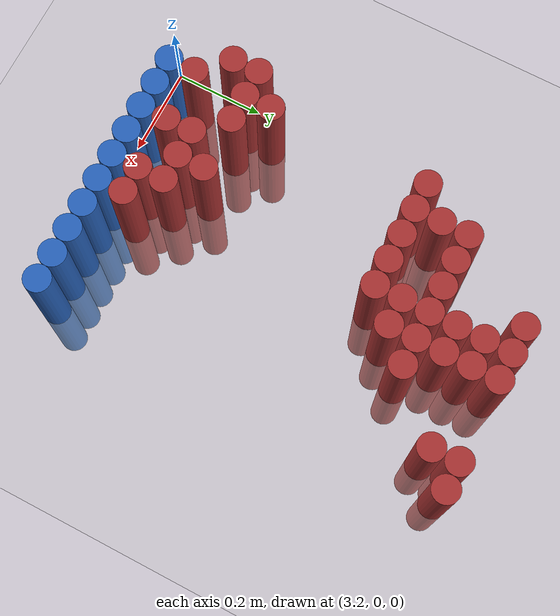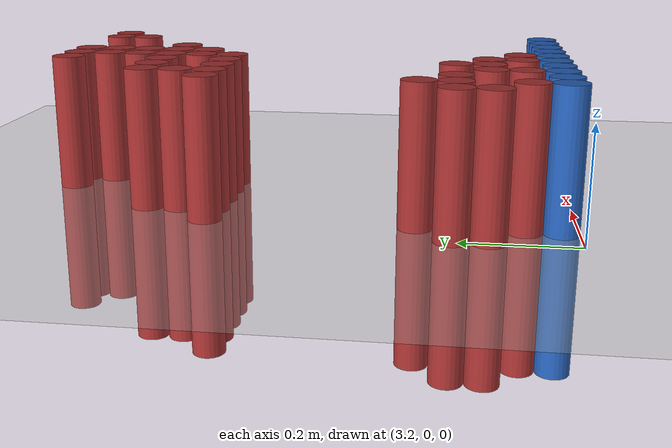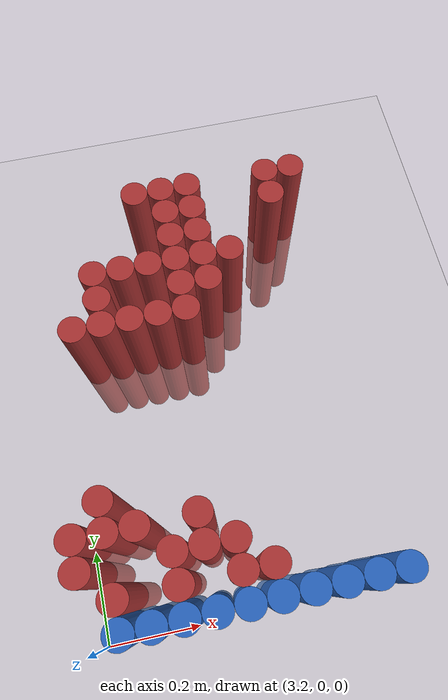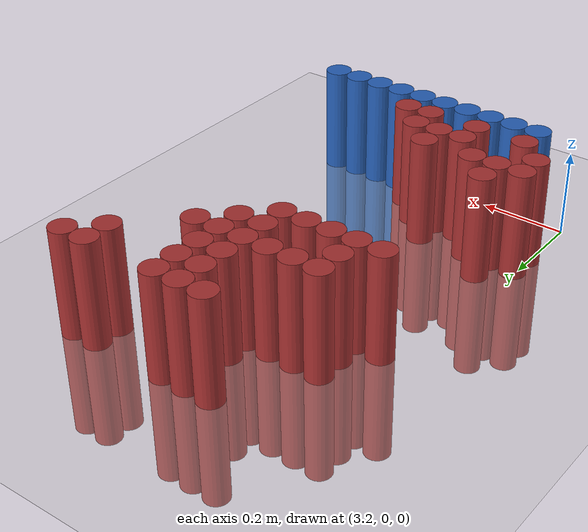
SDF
<sdf version="1.6">
 <world name="default">
  <model name="ground_plane">
   <static>1</static>
   <link name="link">
    <collision name="collision">
     <geometry><plane><normal>0 0 1</normal><size>100 100</size></plane></geometry>
     <surface><friction><ode><mu>100</mu><mu2>50</mu2></ode></friction></surface>
    </collision>
    <visual name="visual">
     <cast_shadows>0</cast_shadows>
     <geometry><plane><normal>0 0 1</normal><size>100 100</size></plane></geometry>
     <material>
      <script><uri>file://media/materials/scripts/gazebo.material</uri><name>Gazebo/Grey</name></script>
     </material>
    </visual>
   </link>
  </model>
  <model name="unit_cylinder_224">
   <static>1</static>
   <pose>3.450000 0.930000 0.000000 0.000000 0.000000 0.000000</pose>
   <link name="link">
    <inertial>
     <mass>1</mass>
     <inertia><ixx>0.145833</ixx><ixy>0</ixy><ixz>0</ixz><iyy>0.145833</iyy><iyz>0</iyz><izz>0.125</izz></inertia>
    </inertial>
    <collision name="collision">
     <geometry><cylinder><radius>0.030000</radius><length>0.5</length></cylinder></geometry>
    </collision>
    <visual name="visual">
     <geometry><cylinder><radius>0.030000</radius><length>0.5</length></cylinder></geometry>
     <material>
      <ambient>0.648000 0.192000 0.192000 1</ambient>
      <diffuse>0.648000 0.192000 0.192000 1</diffuse>
     </material>
     <material>
      <script><name>Gazebo/Grey</name><uri>file://media/materials/scripts/gazebo.material</uri></script>
     </material>
    </visual>
   </link>
  </model>
  <model name="unit_cylinder_225">
   <static>1</static>
   <pose>3.510000 0.930000 0.000000 0.000000 0.000000 0.000000</pose>
   <link name="link">
    <inertial>
     <mass>1</mass>
     <inertia><ixx>0.145833</ixx><ixy>0</ixy><ixz>0</ixz><iyy>0.145833</iyy><iyz>0</iyz><izz>0.125</izz></inertia>
    </inertial>
    <collision name="collision">
     <geometry><cylinder><radius>0.030000</radius><length>0.5</length></cylinder></geometry>
    </collision>
    <visual name="visual">
     <geometry><cylinder><radius>0.030000</radius><length>0.5</length></cylinder></geometry>
     <material>
      <ambient>0.648000 0.192000 0.192000 1</ambient>
      <diffuse>0.648000 0.192000 0.192000 1</diffuse>
     </material>
     <material>
      <script><name>Gazebo/Grey</name><uri>file://media/materials/scripts/gazebo.material</uri></script>
     </material>
    </visual>
   </link>
  </model>
  <model name="unit_cylinder_226">
   <static>1</static>
   <pose>3.570000 0.930000 0.000000 0.000000 0.000000 0.000000</pose>
   <link name="link">
    <inertial>
     <mass>1</mass>
     <inertia><ixx>0.145833</ixx><ixy>0</ixy><ixz>0</ixz><iyy>0.145833</iyy><iyz>0</iyz><izz>0.125</izz></inertia>
    </inertial>
    <collision name="collision">
     <geometry><cylinder><radius>0.030000</radius><length>0.5</length></cylinder></geometry>
    </collision>
    <visual name="visual">
     <geometry><cylinder><radius>0.030000</radius><length>0.5</length></cylinder></geometry>
     <material>
      <ambient>0.648000 0.192000 0.192000 1</ambient>
      <diffuse>0.648000 0.192000 0.192000 1</diffuse>
     </material>
     <material>
      <script><name>Gazebo/Grey</name><uri>file://media/materials/scripts/gazebo.material</uri></script>
     </material>
    </visual>
   </link>
  </model>
  <model name="unit_cylinder_227">
   <static>1</static>
   <pose>3.750000 0.930000 0.000000 0.000000 0.000000 0.000000</pose>
   <link name="link">
    <inertial>
     <mass>1</mass>
     <inertia><ixx>0.145833</ixx><ixy>0</ixy><ixz>0</ixz><iyy>0.145833</iyy><iyz>0</iyz><izz>0.125</izz></inertia>
    </inertial>
    <collision name="collision">
     <geometry><cylinder><radius>0.030000</radius><length>0.5</length></cylinder></geometry>
    </collision>
    <visual name="visual">
     <geometry><cylinder><radius>0.030000</radius><length>0.5</length></cylinder></geometry>
     <material>
      <ambient>0.648000 0.192000 0.192000 1</ambient>
      <diffuse>0.648000 0.192000 0.192000 1</diffuse>
     </material>
     <material>
      <script><name>Gazebo/Grey</name><uri>file://media/materials/scripts/gazebo.material</uri></script>
     </material>
    </visual>
   </link>
  </model>
  <model name="unit_cylinder_228">
   <static>1</static>
   <pose>3.810000 0.930000 0.000000 0.000000 0.000000 0.000000</pose>
   <link name="link">
    <inertial>
     <mass>1</mass>
     <inertia><ixx>0.145833</ixx><ixy>0</ixy><ixz>0</ixz><iyy>0.145833</iyy><iyz>0</iyz><izz>0.125</izz></inertia>
    </inertial>
    <collision name="collision">
     <geometry><cylinder><radius>0.030000</radius><length>0.5</length></cylinder></geometry>
    </collision>
    <visual name="visual">
     <geometry><cylinder><radius>0.030000</radius><length>0.5</length></cylinder></geometry>
     <material>
      <ambient>0.648000 0.192000 0.192000 1</ambient>
      <diffuse>0.648000 0.192000 0.192000 1</diffuse>
     </material>
     <material>
      <script><name>Gazebo/Grey</name><uri>file://media/materials/scripts/gazebo.material</uri></script>
     </material>
    </visual>
   </link>
  </model>
  <model name="unit_cylinder_232">
   <static>1</static>
   <pose>3.510000 0.870000 0.000000 0.000000 0.000000 0.000000</pose>
   <link name="link">
    <inertial>
     <mass>1</mass>
     <inertia><ixx>0.145833</ixx><ixy>0</ixy><ixz>0</ixz><iyy>0.145833</iyy><iyz>0</iyz><izz>0.125</izz></inertia>
    </inertial>
    <collision name="collision">
     <geometry><cylinder><radius>0.030000</radius><length>0.5</length></cylinder></geometry>
    </collision>
    <visual name="visual">
     <geometry><cylinder><radius>0.030000</radius><length>0.5</length></cylinder></geometry>
     <material>
      <ambient>0.648000 0.192000 0.192000 1</ambient>
      <diffuse>0.648000 0.192000 0.192000 1</diffuse>
     </material>
     <material>
      <script><name>Gazebo/Grey</name><uri>file://media/materials/scripts/gazebo.material</uri></script>
     </material>
    </visual>
   </link>
  </model>
  <model name="unit_cylinder_233">
   <static>1</static>
   <pose>3.570000 0.870000 0.000000 0.000000 0.000000 0.000000</pose>
   <link name="link">
    <inertial>
     <mass>1</mass>
     <inertia><ixx>0.145833</ixx><ixy>0</ixy><ixz>0</ixz><iyy>0.145833</iyy><iyz>0</iyz><izz>0.125</izz></inertia>
    </inertial>
    <collision name="collision">
     <geometry><cylinder><radius>0.030000</radius><length>0.5</length></cylinder></geometry>
    </collision>
    <visual name="visual">
     <geometry><cylinder><radius>0.030000</radius><length>0.5</length></cylinder></geometry>
     <material>
      <ambient>0.648000 0.192000 0.192000 1</ambient>
      <diffuse>0.648000 0.192000 0.192000 1</diffuse>
     </material>
     <material>
      <script><name>Gazebo/Grey</name><uri>file://media/materials/scripts/gazebo.material</uri></script>
     </material>
    </visual>
   </link>
  </model>
  <model name="unit_cylinder_234">
   <static>1</static>
   <pose>3.750000 0.870000 0.000000 0.000000 0.000000 0.000000</pose>
   <link name="link">
    <inertial>
     <mass>1</mass>
     <inertia><ixx>0.145833</ixx><ixy>0</ixy><ixz>0</ixz><iyy>0.145833</iyy><iyz>0</iyz><izz>0.125</izz></inertia>
    </inertial>
    <collision name="collision">
     <geometry><cylinder><radius>0.030000</radius><length>0.5</length></cylinder></geometry>
    </collision>
    <visual name="visual">
     <geometry><cylinder><radius>0.030000</radius><length>0.5</length></cylinder></geometry>
     <material>
      <ambient>0.648000 0.192000 0.192000 1</ambient>
      <diffuse>0.648000 0.192000 0.192000 1</diffuse>
     </material>
     <material>
      <script><name>Gazebo/Grey</name><uri>file://media/materials/scripts/gazebo.material</uri></script>
     </material>
    </visual>
   </link>
  </model>
  <model name="unit_cylinder_235">
   <static>1</static>
   <pose>3.510000 0.810000 0.000000 0.000000 0.000000 0.000000</pose>
   <link name="link">
    <inertial>
     <mass>1</mass>
     <inertia><ixx>0.145833</ixx><ixy>0</ixy><ixz>0</ixz><iyy>0.145833</iyy><iyz>0</iyz><izz>0.125</izz></inertia>
    </inertial>
    <collision name="collision">
     <geometry><cylinder><radius>0.030000</radius><length>0.5</length></cylinder></geometry>
    </collision>
    <visual name="visual">
     <geometry><cylinder><radius>0.030000</radius><length>0.5</length></cylinder></geometry>
     <material>
      <ambient>0.648000 0.192000 0.192000 1</ambient>
      <diffuse>0.648000 0.192000 0.192000 1</diffuse>
     </material>
     <material>
      <script><name>Gazebo/Grey</name><uri>file://media/materials/scripts/gazebo.material</uri></script>
     </material>
    </visual>
   </link>
  </model>
  <model name="unit_cylinder_236">
   <static>1</static>
   <pose>3.570000 0.810000 0.000000 0.000000 0.000000 0.000000</pose>
   <link name="link">
    <inertial>
     <mass>1</mass>
     <inertia><ixx>0.145833</ixx><ixy>0</ixy><ixz>0</ixz><iyy>0.145833</iyy><iyz>0</iyz><izz>0.125</izz></inertia>
    </inertial>
    <collision name="collision">
     <geometry><cylinder><radius>0.030000</radius><length>0.5</length></cylinder></geometry>
    </collision>
    <visual name="visual">
     <geometry><cylinder><radius>0.030000</radius><length>0.5</length></cylinder></geometry>
     <material>
      <ambient>0.648000 0.192000 0.192000 1</ambient>
      <diffuse>0.648000 0.192000 0.192000 1</diffuse>
     </material>
     <material>
      <script><name>Gazebo/Grey</name><uri>file://media/materials/scripts/gazebo.material</uri></script>
     </material>
    </visual>
   </link>
  </model>
  <model name="unit_cylinder_240">
   <static>1</static>
   <pose>3.330000 0.750000 0.000000 0.000000 0.000000 0.000000</pose>
   <link name="link">
    <inertial>
     <mass>1</mass>
     <inertia><ixx>0.145833</ixx><ixy>0</ixy><ixz>0</ixz><iyy>0.145833</iyy><iyz>0</iyz><izz>0.125</izz></inertia>
    </inertial>
    <collision name="collision">
     <geometry><cylinder><radius>0.030000</radius><length>0.5</length></cylinder></geometry>
    </collision>
    <visual name="visual">
     <geometry><cylinder><radius>0.030000</radius><length>0.5</length></cylinder></geometry>
     <material>
      <ambient>0.648000 0.192000 0.192000 1</ambient>
      <diffuse>0.648000 0.192000 0.192000 1</diffuse>
     </material>
     <material>
      <script><name>Gazebo/Grey</name><uri>file://media/materials/scripts/gazebo.material</uri></script>
     </material>
    </visual>
   </link>
  </model>
  <model name="unit_cylinder_241">
   <static>1</static>
   <pose>3.390000 0.750000 0.000000 0.000000 0.000000 0.000000</pose>
   <link name="link">
    <inertial>
     <mass>1</mass>
     <inertia><ixx>0.145833</ixx><ixy>0</ixy><ixz>0</ixz><iyy>0.145833</iyy><iyz>0</iyz><izz>0.125</izz></inertia>
    </inertial>
    <collision name="collision">
     <geometry><cylinder><radius>0.030000</radius><length>0.5</length></cylinder></geometry>
    </collision>
    <visual name="visual">
     <geometry><cylinder><radius>0.030000</radius><length>0.5</length></cylinder></geometry>
     <material>
      <ambient>0.648000 0.192000 0.192000 1</ambient>
      <diffuse>0.648000 0.192000 0.192000 1</diffuse>
     </material>
     <material>
      <script><name>Gazebo/Grey</name><uri>file://media/materials/scripts/gazebo.material</uri></script>
     </material>
    </visual>
   </link>
  </model>
  <model name="unit_cylinder_242">
   <static>1</static>
   <pose>3.450000 0.750000 0.000000 0.000000 0.000000 0.000000</pose>
   <link name="link">
    <inertial>
     <mass>1</mass>
     <inertia><ixx>0.145833</ixx><ixy>0</ixy><ixz>0</ixz><iyy>0.145833</iyy><iyz>0</iyz><izz>0.125</izz></inertia>
    </inertial>
    <collision name="collision">
     <geometry><cylinder><radius>0.030000</radius><length>0.5</length></cylinder></geometry>
    </collision>
    <visual name="visual">
     <geometry><cylinder><radius>0.030000</radius><length>0.5</length></cylinder></geometry>
     <material>
      <ambient>0.648000 0.192000 0.192000 1</ambient>
      <diffuse>0.648000 0.192000 0.192000 1</diffuse>
     </material>
     <material>
      <script><name>Gazebo/Grey</name><uri>file://media/materials/scripts/gazebo.material</uri></script>
     </material>
    </visual>
   </link>
  </model>
  <model name="unit_cylinder_243">
   <static>1</static>
   <pose>3.510000 0.750000 0.000000 0.000000 0.000000 0.000000</pose>
   <link name="link">
    <inertial>
     <mass>1</mass>
     <inertia><ixx>0.145833</ixx><ixy>0</ixy><ixz>0</ixz><iyy>0.145833</iyy><iyz>0</iyz><izz>0.125</izz></inertia>
    </inertial>
    <collision name="collision">
     <geometry><cylinder><radius>0.030000</radius><length>0.5</length></cylinder></geometry>
    </collision>
    <visual name="visual">
     <geometry><cylinder><radius>0.030000</radius><length>0.5</length></cylinder></geometry>
     <material>
      <ambient>0.648000 0.192000 0.192000 1</ambient>
      <diffuse>0.648000 0.192000 0.192000 1</diffuse>
     </material>
     <material>
      <script><name>Gazebo/Grey</name><uri>file://media/materials/scripts/gazebo.material</uri></script>
     </material>
    </visual>
   </link>
  </model>
  <model name="unit_cylinder_244">
   <static>1</static>
   <pose>3.570000 0.750000 0.000000 0.000000 0.000000 0.000000</pose>
   <link name="link">
    <inertial>
     <mass>1</mass>
     <inertia><ixx>0.145833</ixx><ixy>0</ixy><ixz>0</ixz><iyy>0.145833</iyy><iyz>0</iyz><izz>0.125</izz></inertia>
    </inertial>
    <collision name="collision">
     <geometry><cylinder><radius>0.030000</radius><length>0.5</length></cylinder></geometry>
    </collision>
    <visual name="visual">
     <geometry><cylinder><radius>0.030000</radius><length>0.5</length></cylinder></geometry>
     <material>
      <ambient>0.648000 0.192000 0.192000 1</ambient>
      <diffuse>0.648000 0.192000 0.192000 1</diffuse>
     </material>
     <material>
      <script><name>Gazebo/Grey</name><uri>file://media/materials/scripts/gazebo.material</uri></script>
     </material>
    </visual>
   </link>
  </model>
  <model name="unit_cylinder_245">
   <static>1</static>
   <pose>3.630000 0.750000 0.000000 0.000000 0.000000 0.000000</pose>
   <link name="link">
    <inertial>
     <mass>1</mass>
     <inertia><ixx>0.145833</ixx><ixy>0</ixy><ixz>0</ixz><iyy>0.145833</iyy><iyz>0</iyz><izz>0.125</izz></inertia>
    </inertial>
    <collision name="collision">
     <geometry><cylinder><radius>0.030000</radius><length>0.5</length></cylinder></geometry>
    </collision>
    <visual name="visual">
     <geometry><cylinder><radius>0.030000</radius><length>0.5</length></cylinder></geometry>
     <material>
      <ambient>0.648000 0.192000 0.192000 1</ambient>
      <diffuse>0.648000 0.192000 0.192000 1</diffuse>
     </material>
     <material>
      <script><name>Gazebo/Grey</name><uri>file://media/materials/scripts/gazebo.material</uri></script>
     </material>
    </visual>
   </link>
  </model>
  <model name="unit_cylinder_247">
   <static>1</static>
   <pose>3.330000 0.690000 0.000000 0.000000 0.000000 0.000000</pose>
   <link name="link">
    <inertial>
     <mass>1</mass>
     <inertia><ixx>0.145833</ixx><ixy>0</ixy><ixz>0</ixz><iyy>0.145833</iyy><iyz>0</iyz><izz>0.125</izz></inertia>
    </inertial>
    <collision name="collision">
     <geometry><cylinder><radius>0.030000</radius><length>0.5</length></cylinder></geometry>
    </collision>
    <visual name="visual">
     <geometry><cylinder><radius>0.030000</radius><length>0.5</length></cylinder></geometry>
     <material>
      <ambient>0.648000 0.192000 0.192000 1</ambient>
      <diffuse>0.648000 0.192000 0.192000 1</diffuse>
     </material>
     <material>
      <script><name>Gazebo/Grey</name><uri>file://media/materials/scripts/gazebo.material</uri></script>
     </material>
    </visual>
   </link>
  </model>
  <model name="unit_cylinder_248">
   <static>1</static>
   <pose>3.510000 0.690000 0.000000 0.000000 0.000000 0.000000</pose>
   <link name="link">
    <inertial>
     <mass>1</mass>
     <inertia><ixx>0.145833</ixx><ixy>0</ixy><ixz>0</ixz><iyy>0.145833</iyy><iyz>0</iyz><izz>0.125</izz></inertia>
    </inertial>
    <collision name="collision">
     <geometry><cylinder><radius>0.030000</radius><length>0.5</length></cylinder></geometry>
    </collision>
    <visual name="visual">
     <geometry><cylinder><radius>0.030000</radius><length>0.5</length></cylinder></geometry>
     <material>
      <ambient>0.648000 0.192000 0.192000 1</ambient>
      <diffuse>0.648000 0.192000 0.192000 1</diffuse>
     </material>
     <material>
      <script><name>Gazebo/Grey</name><uri>file://media/materials/scripts/gazebo.material</uri></script>
     </material>
    </visual>
   </link>
  </model>
  <model name="unit_cylinder_249">
   <static>1</static>
   <pose>3.570000 0.690000 0.000000 0.000000 0.000000 0.000000</pose>
   <link name="link">
    <inertial>
     <mass>1</mass>
     <inertia><ixx>0.145833</ixx><ixy>0</ixy><ixz>0</ixz><iyy>0.145833</iyy><iyz>0</iyz><izz>0.125</izz></inertia>
    </inertial>
    <collision name="collision">
     <geometry><cylinder><radius>0.030000</radius><length>0.5</length></cylinder></geometry>
    </collision>
    <visual name="visual">
     <geometry><cylinder><radius>0.030000</radius><length>0.5</length></cylinder></geometry>
     <material>
      <ambient>0.648000 0.192000 0.192000 1</ambient>
      <diffuse>0.648000 0.192000 0.192000 1</diffuse>
     </material>
     <material>
      <script><name>Gazebo/Grey</name><uri>file://media/materials/scripts/gazebo.material</uri></script>
     </material>
    </visual>
   </link>
  </model>
  <model name="unit_cylinder_250">
   <static>1</static>
   <pose>3.270000 0.630000 0.000000 0.000000 0.000000 0.000000</pose>
   <link name="link">
    <inertial>
     <mass>1</mass>
     <inertia><ixx>0.145833</ixx><ixy>0</ixy><ixz>0</ixz><iyy>0.145833</iyy><iyz>0</iyz><izz>0.125</izz></inertia>
    </inertial>
    <collision name="collision">
     <geometry><cylinder><radius>0.030000</radius><length>0.5</length></cylinder></geometry>
    </collision>
    <visual name="visual">
     <geometry><cylinder><radius>0.030000</radius><length>0.5</length></cylinder></geometry>
     <material>
      <ambient>0.648000 0.192000 0.192000 1</ambient>
      <diffuse>0.648000 0.192000 0.192000 1</diffuse>
     </material>
     <material>
      <script><name>Gazebo/Grey</name><uri>file://media/materials/scripts/gazebo.material</uri></script>
     </material>
    </visual>
   </link>
  </model>
  <model name="unit_cylinder_251">
   <static>1</static>
   <pose>3.330000 0.630000 0.000000 0.000000 0.000000 0.000000</pose>
   <link name="link">
    <inertial>
     <mass>1</mass>
     <inertia><ixx>0.145833</ixx><ixy>0</ixy><ixz>0</ixz><iyy>0.145833</iyy><iyz>0</iyz><izz>0.125</izz></inertia>
    </inertial>
    <collision name="collision">
     <geometry><cylinder><radius>0.030000</radius><length>0.5</length></cylinder></geometry>
    </collision>
    <visual name="visual">
     <geometry><cylinder><radius>0.030000</radius><length>0.5</length></cylinder></geometry>
     <material>
      <ambient>0.648000 0.192000 0.192000 1</ambient>
      <diffuse>0.648000 0.192000 0.192000 1</diffuse>
     </material>
     <material>
      <script><name>Gazebo/Grey</name><uri>file://media/materials/scripts/gazebo.material</uri></script>
     </material>
    </visual>
   </link>
  </model>
  <model name="unit_cylinder_252">
   <static>1</static>
   <pose>3.390000 0.630000 0.000000 0.000000 0.000000 0.000000</pose>
   <link name="link">
    <inertial>
     <mass>1</mass>
     <inertia><ixx>0.145833</ixx><ixy>0</ixy><ixz>0</ixz><iyy>0.145833</iyy><iyz>0</iyz><izz>0.125</izz></inertia>
    </inertial>
    <collision name="collision">
     <geometry><cylinder><radius>0.030000</radius><length>0.5</length></cylinder></geometry>
    </collision>
    <visual name="visual">
     <geometry><cylinder><radius>0.030000</radius><length>0.5</length></cylinder></geometry>
     <material>
      <ambient>0.648000 0.192000 0.192000 1</ambient>
      <diffuse>0.648000 0.192000 0.192000 1</diffuse>
     </material>
     <material>
      <script><name>Gazebo/Grey</name><uri>file://media/materials/scripts/gazebo.material</uri></script>
     </material>
    </visual>
   </link>
  </model>
  <model name="unit_cylinder_253">
   <static>1</static>
   <pose>3.450000 0.630000 0.000000 0.000000 0.000000 0.000000</pose>
   <link name="link">
    <inertial>
     <mass>1</mass>
     <inertia><ixx>0.145833</ixx><ixy>0</ixy><ixz>0</ixz><iyy>0.145833</iyy><iyz>0</iyz><izz>0.125</izz></inertia>
    </inertial>
    <collision name="collision">
     <geometry><cylinder><radius>0.030000</radius><length>0.5</length></cylinder></geometry>
    </collision>
    <visual name="visual">
     <geometry><cylinder><radius>0.030000</radius><length>0.5</length></cylinder></geometry>
     <material>
      <ambient>0.648000 0.192000 0.192000 1</ambient>
      <diffuse>0.648000 0.192000 0.192000 1</diffuse>
     </material>
     <material>
      <script><name>Gazebo/Grey</name><uri>file://media/materials/scripts/gazebo.material</uri></script>
     </material>
    </visual>
   </link>
  </model>
  <model name="unit_cylinder_254">
   <static>1</static>
   <pose>3.510000 0.630000 0.000000 0.000000 0.000000 0.000000</pose>
   <link name="link">
    <inertial>
     <mass>1</mass>
     <inertia><ixx>0.145833</ixx><ixy>0</ixy><ixz>0</ixz><iyy>0.145833</iyy><iyz>0</iyz><izz>0.125</izz></inertia>
    </inertial>
    <collision name="collision">
     <geometry><cylinder><radius>0.030000</radius><length>0.5</length></cylinder></geometry>
    </collision>
    <visual name="visual">
     <geometry><cylinder><radius>0.030000</radius><length>0.5</length></cylinder></geometry>
     <material>
      <ambient>0.648000 0.192000 0.192000 1</ambient>
      <diffuse>0.648000 0.192000 0.192000 1</diffuse>
     </material>
     <material>
      <script><name>Gazebo/Grey</name><uri>file://media/materials/scripts/gazebo.material</uri></script>
     </material>
    </visual>
   </link>
  </model>
  <model name="unit_cylinder_266">
   <static>1</static>
   <pose>3.270000 0.270000 0.000000 0.000000 0.000000 0.000000</pose>
   <link name="link">
    <inertial>
     <mass>1</mass>
     <inertia><ixx>0.145833</ixx><ixy>0</ixy><ixz>0</ixz><iyy>0.145833</iyy><iyz>0</iyz><izz>0.125</izz></inertia>
    </inertial>
    <collision name="collision">
     <geometry><cylinder><radius>0.030000</radius><length>0.5</length></cylinder></geometry>
    </collision>
    <visual name="visual">
     <geometry><cylinder><radius>0.030000</radius><length>0.5</length></cylinder></geometry>
     <material>
      <ambient>0.648000 0.192000 0.192000 1</ambient>
      <diffuse>0.648000 0.192000 0.192000 1</diffuse>
     </material>
     <material>
      <script><name>Gazebo/Grey</name><uri>file://media/materials/scripts/gazebo.material</uri></script>
     </material>
    </visual>
   </link>
  </model>
  <model name="unit_cylinder_272">
   <static>1</static>
   <pose>3.210000 0.210000 0.000000 0.000000 0.000000 0.000000</pose>
   <link name="link">
    <inertial>
     <mass>1</mass>
     <inertia><ixx>0.145833</ixx><ixy>0</ixy><ixz>0</ixz><iyy>0.145833</iyy><iyz>0</iyz><izz>0.125</izz></inertia>
    </inertial>
    <collision name="collision">
     <geometry><cylinder><radius>0.030000</radius><length>0.5</length></cylinder></geometry>
    </collision>
    <visual name="visual">
     <geometry><cylinder><radius>0.030000</radius><length>0.5</length></cylinder></geometry>
     <material>
      <ambient>0.648000 0.192000 0.192000 1</ambient>
      <diffuse>0.648000 0.192000 0.192000 1</diffuse>
     </material>
     <material>
      <script><name>Gazebo/Grey</name><uri>file://media/materials/scripts/gazebo.material</uri></script>
     </material>
    </visual>
   </link>
  </model>
  <model name="unit_cylinder_273">
   <static>1</static>
   <pose>3.270000 0.210000 0.000000 0.000000 0.000000 0.000000</pose>
   <link name="link">
    <inertial>
     <mass>1</mass>
     <inertia><ixx>0.145833</ixx><ixy>0</ixy><ixz>0</ixz><iyy>0.145833</iyy><iyz>0</iyz><izz>0.125</izz></inertia>
    </inertial>
    <collision name="collision">
     <geometry><cylinder><radius>0.030000</radius><length>0.5</length></cylinder></geometry>
    </collision>
    <visual name="visual">
     <geometry><cylinder><radius>0.030000</radius><length>0.5</length></cylinder></geometry>
     <material>
      <ambient>0.648000 0.192000 0.192000 1</ambient>
      <diffuse>0.648000 0.192000 0.192000 1</diffuse>
     </material>
     <material>
      <script><name>Gazebo/Grey</name><uri>file://media/materials/scripts/gazebo.material</uri></script>
     </material>
    </visual>
   </link>
  </model>
  <model name="unit_cylinder_274">
   <static>1</static>
   <pose>3.330000 0.210000 0.000000 0.000000 0.000000 0.000000</pose>
   <link name="link">
    <inertial>
     <mass>1</mass>
     <inertia><ixx>0.145833</ixx><ixy>0</ixy><ixz>0</ixz><iyy>0.145833</iyy><iyz>0</iyz><izz>0.125</izz></inertia>
    </inertial>
    <collision name="collision">
     <geometry><cylinder><radius>0.030000</radius><length>0.5</length></cylinder></geometry>
    </collision>
    <visual name="visual">
     <geometry><cylinder><radius>0.030000</radius><length>0.5</length></cylinder></geometry>
     <material>
      <ambient>0.648000 0.192000 0.192000 1</ambient>
      <diffuse>0.648000 0.192000 0.192000 1</diffuse>
     </material>
     <material>
      <script><name>Gazebo/Grey</name><uri>file://media/materials/scripts/gazebo.material</uri></script>
     </material>
    </visual>
   </link>
  </model>
  <model name="unit_cylinder_275">
   <static>1</static>
   <pose>3.450000 0.210000 0.000000 0.000000 0.000000 0.000000</pose>
   <link name="link">
    <inertial>
     <mass>1</mass>
     <inertia><ixx>0.145833</ixx><ixy>0</ixy><ixz>0</ixz><iyy>0.145833</iyy><iyz>0</iyz><izz>0.125</izz></inertia>
    </inertial>
    <collision name="collision">
     <geometry><cylinder><radius>0.030000</radius><length>0.5</length></cylinder></geometry>
    </collision>
    <visual name="visual">
     <geometry><cylinder><radius>0.030000</radius><length>0.5</length></cylinder></geometry>
     <material>
      <ambient>0.648000 0.192000 0.192000 1</ambient>
      <diffuse>0.648000 0.192000 0.192000 1</diffuse>
     </material>
     <material>
      <script><name>Gazebo/Grey</name><uri>file://media/materials/scripts/gazebo.material</uri></script>
     </material>
    </visual>
   </link>
  </model>
  <model name="unit_cylinder_281">
   <static>1</static>
   <pose>3.210000 0.150000 0.000000 0.000000 0.000000 0.000000</pose>
   <link name="link">
    <inertial>
     <mass>1</mass>
     <inertia><ixx>0.145833</ixx><ixy>0</ixy><ixz>0</ixz><iyy>0.145833</iyy><iyz>0</iyz><izz>0.125</izz></inertia>
    </inertial>
    <collision name="collision">
     <geometry><cylinder><radius>0.030000</radius><length>0.5</length></cylinder></geometry>
    </collision>
    <visual name="visual">
     <geometry><cylinder><radius>0.030000</radius><length>0.5</length></cylinder></geometry>
     <material>
      <ambient>0.648000 0.192000 0.192000 1</ambient>
      <diffuse>0.648000 0.192000 0.192000 1</diffuse>
     </material>
     <material>
      <script><name>Gazebo/Grey</name><uri>file://media/materials/scripts/gazebo.material</uri></script>
     </material>
    </visual>
   </link>
  </model>
  <model name="unit_cylinder_282">
   <static>1</static>
   <pose>3.390000 0.150000 0.000000 0.000000 0.000000 0.000000</pose>
   <link name="link">
    <inertial>
     <mass>1</mass>
     <inertia><ixx>0.145833</ixx><ixy>0</ixy><ixz>0</ixz><iyy>0.145833</iyy><iyz>0</iyz><izz>0.125</izz></inertia>
    </inertial>
    <collision name="collision">
     <geometry><cylinder><radius>0.030000</radius><length>0.5</length></cylinder></geometry>
    </collision>
    <visual name="visual">
     <geometry><cylinder><radius>0.030000</radius><length>0.5</length></cylinder></geometry>
     <material>
      <ambient>0.648000 0.192000 0.192000 1</ambient>
      <diffuse>0.648000 0.192000 0.192000 1</diffuse>
     </material>
     <material>
      <script><name>Gazebo/Grey</name><uri>file://media/materials/scripts/gazebo.material</uri></script>
     </material>
    </visual>
   </link>
  </model>
  <model name="unit_cylinder_283">
   <static>1</static>
   <pose>3.450000 0.150000 0.000000 0.000000 0.000000 0.000000</pose>
   <link name="link">
    <inertial>
     <mass>1</mass>
     <inertia><ixx>0.145833</ixx><ixy>0</ixy><ixz>0</ixz><iyy>0.145833</iyy><iyz>0</iyz><izz>0.125</izz></inertia>
    </inertial>
    <collision name="collision">
     <geometry><cylinder><radius>0.030000</radius><length>0.5</length></cylinder></geometry>
    </collision>
    <visual name="visual">
     <geometry><cylinder><radius>0.030000</radius><length>0.5</length></cylinder></geometry>
     <material>
      <ambient>0.648000 0.192000 0.192000 1</ambient>
      <diffuse>0.648000 0.192000 0.192000 1</diffuse>
     </material>
     <material>
      <script><name>Gazebo/Grey</name><uri>file://media/materials/scripts/gazebo.material</uri></script>
     </material>
    </visual>
   </link>
  </model>
  <model name="unit_cylinder_284">
   <static>1</static>
   <pose>3.510000 0.150000 0.000000 0.000000 0.000000 0.000000</pose>
   <link name="link">
    <inertial>
     <mass>1</mass>
     <inertia><ixx>0.145833</ixx><ixy>0</ixy><ixz>0</ixz><iyy>0.145833</iyy><iyz>0</iyz><izz>0.125</izz></inertia>
    </inertial>
    <collision name="collision">
     <geometry><cylinder><radius>0.030000</radius><length>0.5</length></cylinder></geometry>
    </collision>
    <visual name="visual">
     <geometry><cylinder><radius>0.030000</radius><length>0.5</length></cylinder></geometry>
     <material>
      <ambient>0.648000 0.192000 0.192000 1</ambient>
      <diffuse>0.648000 0.192000 0.192000 1</diffuse>
     </material>
     <material>
      <script><name>Gazebo/Grey</name><uri>file://media/materials/scripts/gazebo.material</uri></script>
     </material>
    </visual>
   </link>
  </model>
  <model name="unit_cylinder_295">
   <static>1</static>
   <pose>3.270000 0.090000 0.000000 0.000000 0.000000 0.000000</pose>
   <link name="link">
    <inertial>
     <mass>1</mass>
     <inertia><ixx>0.145833</ixx><ixy>0</ixy><ixz>0</ixz><iyy>0.145833</iyy><iyz>0</iyz><izz>0.125</izz></inertia>
    </inertial>
    <collision name="collision">
     <geometry><cylinder><radius>0.030000</radius><length>0.5</length></cylinder></geometry>
    </collision>
    <visual name="visual">
     <geometry><cylinder><radius>0.030000</radius><length>0.5</length></cylinder></geometry>
     <material>
      <ambient>0.648000 0.192000 0.192000 1</ambient>
      <diffuse>0.648000 0.192000 0.192000 1</diffuse>
     </material>
     <material>
      <script><name>Gazebo/Grey</name><uri>file://media/materials/scripts/gazebo.material</uri></script>
     </material>
    </visual>
   </link>
  </model>
  <model name="unit_cylinder_296">
   <static>1</static>
   <pose>3.390000 0.090000 0.000000 0.000000 0.000000 0.000000</pose>
   <link name="link">
    <inertial>
     <mass>1</mass>
     <inertia><ixx>0.145833</ixx><ixy>0</ixy><ixz>0</ixz><iyy>0.145833</iyy><iyz>0</iyz><izz>0.125</izz></inertia>
    </inertial>
    <collision name="collision">
     <geometry><cylinder><radius>0.030000</radius><length>0.5</length></cylinder></geometry>
    </collision>
    <visual name="visual">
     <geometry><cylinder><radius>0.030000</radius><length>0.5</length></cylinder></geometry>
     <material>
      <ambient>0.648000 0.192000 0.192000 1</ambient>
      <diffuse>0.648000 0.192000 0.192000 1</diffuse>
     </material>
     <material>
      <script><name>Gazebo/Grey</name><uri>file://media/materials/scripts/gazebo.material</uri></script>
     </material>
    </visual>
   </link>
  </model>
  <model name="unit_cylinder_297">
   <static>1</static>
   <pose>3.510000 0.090000 0.000000 0.000000 0.000000 0.000000</pose>
   <link name="link">
    <inertial>
     <mass>1</mass>
     <inertia><ixx>0.145833</ixx><ixy>0</ixy><ixz>0</ixz><iyy>0.145833</iyy><iyz>0</iyz><izz>0.125</izz></inertia>
    </inertial>
    <collision name="collision">
     <geometry><cylinder><radius>0.030000</radius><length>0.5</length></cylinder></geometry>
    </collision>
    <visual name="visual">
     <geometry><cylinder><radius>0.030000</radius><length>0.5</length></cylinder></geometry>
     <material>
      <ambient>0.648000 0.192000 0.192000 1</ambient>
      <diffuse>0.648000 0.192000 0.192000 1</diffuse>
     </material>
     <material>
      <script><name>Gazebo/Grey</name><uri>file://media/materials/scripts/gazebo.material</uri></script>
     </material>
    </visual>
   </link>
  </model>
  <model name="unit_cylinder_298">
   <static>1</static>
   <pose>3.570000 0.090000 0.000000 0.000000 0.000000 0.000000</pose>
   <link name="link">
    <inertial>
     <mass>1</mass>
     <inertia><ixx>0.145833</ixx><ixy>0</ixy><ixz>0</ixz><iyy>0.145833</iyy><iyz>0</iyz><izz>0.125</izz></inertia>
    </inertial>
    <collision name="collision">
     <geometry><cylinder><radius>0.030000</radius><length>0.5</length></cylinder></geometry>
    </collision>
    <visual name="visual">
     <geometry><cylinder><radius>0.030000</radius><length>0.5</length></cylinder></geometry>
     <material>
      <ambient>0.648000 0.192000 0.192000 1</ambient>
      <diffuse>0.648000 0.192000 0.192000 1</diffuse>
     </material>
     <material>
      <script><name>Gazebo/Grey</name><uri>file://media/materials/scripts/gazebo.material</uri></script>
     </material>
    </visual>
   </link>
  </model>
  <model name="unit_cylinder_319">
   <static>1</static>
   <pose>3.270000 0.030000 0.000000 0.000000 0.000000 0.000000</pose>
   <link name="link">
    <inertial>
     <mass>1</mass>
     <inertia><ixx>0.145833</ixx><ixy>0</ixy><ixz>0</ixz><iyy>0.145833</iyy><iyz>0</iyz><izz>0.125</izz></inertia>
    </inertial>
    <collision name="collision">
     <geometry><cylinder><radius>0.030000</radius><length>0.5</length></cylinder></geometry>
    </collision>
    <visual name="visual">
     <geometry><cylinder><radius>0.030000</radius><length>0.5</length></cylinder></geometry>
     <material>
      <ambient>0.152000 0.379000 0.720000 1</ambient>
      <diffuse>0.152000 0.379000 0.720000 1</diffuse>
     </material>
     <material>
      <script><name>Gazebo/Grey</name><uri>file://media/materials/scripts/gazebo.material</uri></script>
     </material>
    </visual>
   </link>
  </model>
  <model name="unit_cylinder_320">
   <static>1</static>
   <pose>3.330000 0.030000 0.000000 0.000000 0.000000 0.000000</pose>
   <link name="link">
    <inertial>
     <mass>1</mass>
     <inertia><ixx>0.145833</ixx><ixy>0</ixy><ixz>0</ixz><iyy>0.145833</iyy><iyz>0</iyz><izz>0.125</izz></inertia>
    </inertial>
    <collision name="collision">
     <geometry><cylinder><radius>0.030000</radius><length>0.5</length></cylinder></geometry>
    </collision>
    <visual name="visual">
     <geometry><cylinder><radius>0.030000</radius><length>0.5</length></cylinder></geometry>
     <material>
      <ambient>0.152000 0.379000 0.720000 1</ambient>
      <diffuse>0.152000 0.379000 0.720000 1</diffuse>
     </material>
     <material>
      <script><name>Gazebo/Grey</name><uri>file://media/materials/scripts/gazebo.material</uri></script>
     </material>
    </visual>
   </link>
  </model>
  <model name="unit_cylinder_321">
   <static>1</static>
   <pose>3.390000 0.030000 0.000000 0.000000 0.000000 0.000000</pose>
   <link name="link">
    <inertial>
     <mass>1</mass>
     <inertia><ixx>0.145833</ixx><ixy>0</ixy><ixz>0</ixz><iyy>0.145833</iyy><iyz>0</iyz><izz>0.125</izz></inertia>
    </inertial>
    <collision name="collision">
     <geometry><cylinder><radius>0.030000</radius><length>0.5</length></cylinder></geometry>
    </collision>
    <visual name="visual">
     <geometry><cylinder><radius>0.030000</radius><length>0.5</length></cylinder></geometry>
     <material>
      <ambient>0.152000 0.379000 0.720000 1</ambient>
      <diffuse>0.152000 0.379000 0.720000 1</diffuse>
     </material>
     <material>
      <script><name>Gazebo/Grey</name><uri>file://media/materials/scripts/gazebo.material</uri></script>
     </material>
    </visual>
   </link>
  </model>
  <model name="unit_cylinder_322">
   <static>1</static>
   <pose>3.450000 0.030000 0.000000 0.000000 0.000000 0.000000</pose>
   <link name="link">
    <inertial>
     <mass>1</mass>
     <inertia><ixx>0.145833</ixx><ixy>0</ixy><ixz>0</ixz><iyy>0.145833</iyy><iyz>0</iyz><izz>0.125</izz></inertia>
    </inertial>
    <collision name="collision">
     <geometry><cylinder><radius>0.030000</radius><length>0.5</length></cylinder></geometry>
    </collision>
    <visual name="visual">
     <geometry><cylinder><radius>0.030000</radius><length>0.5</length></cylinder></geometry>
     <material>
      <ambient>0.152000 0.379000 0.720000 1</ambient>
      <diffuse>0.152000 0.379000 0.720000 1</diffuse>
     </material>
     <material>
      <script><name>Gazebo/Grey</name><uri>file://media/materials/scripts/gazebo.material</uri></script>
     </material>
    </visual>
   </link>
  </model>
  <model name="unit_cylinder_323">
   <static>1</static>
   <pose>3.510000 0.030000 0.000000 0.000000 0.000000 0.000000</pose>
   <link name="link">
    <inertial>
     <mass>1</mass>
     <inertia><ixx>0.145833</ixx><ixy>0</ixy><ixz>0</ixz><iyy>0.145833</iyy><iyz>0</iyz><izz>0.125</izz></inertia>
    </inertial>
    <collision name="collision">
     <geometry><cylinder><radius>0.030000</radius><length>0.5</length></cylinder></geometry>
    </collision>
    <visual name="visual">
     <geometry><cylinder><radius>0.030000</radius><length>0.5</length></cylinder></geometry>
     <material>
      <ambient>0.152000 0.379000 0.720000 1</ambient>
      <diffuse>0.152000 0.379000 0.720000 1</diffuse>
     </material>
     <material>
      <script><name>Gazebo/Grey</name><uri>file://media/materials/scripts/gazebo.material</uri></script>
     </material>
    </visual>
   </link>
  </model>
  <model name="unit_cylinder_324">
   <static>1</static>
   <pose>3.570000 0.030000 0.000000 0.000000 0.000000 0.000000</pose>
   <link name="link">
    <inertial>
     <mass>1</mass>
     <inertia><ixx>0.145833</ixx><ixy>0</ixy><ixz>0</ixz><iyy>0.145833</iyy><iyz>0</iyz><izz>0.125</izz></inertia>
    </inertial>
    <collision name="collision">
     <geometry><cylinder><radius>0.030000</radius><length>0.5</length></cylinder></geometry>
    </collision>
    <visual name="visual">
     <geometry><cylinder><radius>0.030000</radius><length>0.5</length></cylinder></geometry>
     <material>
      <ambient>0.152000 0.379000 0.720000 1</ambient>
      <diffuse>0.152000 0.379000 0.720000 1</diffuse>
     </material>
     <material>
      <script><name>Gazebo/Grey</name><uri>file://media/materials/scripts/gazebo.material</uri></script>
     </material>
    </visual>
   </link>
  </model>
  <model name="unit_cylinder_325">
   <static>1</static>
   <pose>3.630000 0.030000 0.000000 0.000000 0.000000 0.000000</pose>
   <link name="link">
    <inertial>
     <mass>1</mass>
     <inertia><ixx>0.145833</ixx><ixy>0</ixy><ixz>0</ixz><iyy>0.145833</iyy><iyz>0</iyz><izz>0.125</izz></inertia>
    </inertial>
    <collision name="collision">
     <geometry><cylinder><radius>0.030000</radius><length>0.5</length></cylinder></geometry>
    </collision>
    <visual name="visual">
     <geometry><cylinder><radius>0.030000</radius><length>0.5</length></cylinder></geometry>
     <material>
      <ambient>0.152000 0.379000 0.720000 1</ambient>
      <diffuse>0.152000 0.379000 0.720000 1</diffuse>
     </material>
     <material>
      <script><name>Gazebo/Grey</name><uri>file://media/materials/scripts/gazebo.material</uri></script>
     </material>
    </visual>
   </link>
  </model>
  <model name="unit_cylinder_326">
   <static>1</static>
   <pose>3.690000 0.030000 0.000000 0.000000 0.000000 0.000000</pose>
   <link name="link">
    <inertial>
     <mass>1</mass>
     <inertia><ixx>0.145833</ixx><ixy>0</ixy><ixz>0</ixz><iyy>0.145833</iyy><iyz>0</iyz><izz>0.125</izz></inertia>
    </inertial>
    <collision name="collision">
     <geometry><cylinder><radius>0.030000</radius><length>0.5</length></cylinder></geometry>
    </collision>
    <visual name="visual">
     <geometry><cylinder><radius>0.030000</radius><length>0.5</length></cylinder></geometry>
     <material>
      <ambient>0.152000 0.379000 0.720000 1</ambient>
      <diffuse>0.152000 0.379000 0.720000 1</diffuse>
     </material>
     <material>
      <script><name>Gazebo/Grey</name><uri>file://media/materials/scripts/gazebo.material</uri></script>
     </material>
    </visual>
   </link>
  </model>
  <model name="unit_cylinder_327">
   <static>1</static>
   <pose>3.750000 0.030000 0.000000 0.000000 0.000000 0.000000</pose>
   <link name="link">
    <inertial>
     <mass>1</mass>
     <inertia><ixx>0.145833</ixx><ixy>0</ixy><ixz>0</ixz><iyy>0.145833</iyy><iyz>0</iyz><izz>0.125</izz></inertia>
    </inertial>
    <collision name="collision">
     <geometry><cylinder><radius>0.030000</radius><length>0.5</length></cylinder></geometry>
    </collision>
    <visual name="visual">
     <geometry><cylinder><radius>0.030000</radius><length>0.5</length></cylinder></geometry>
     <material>
      <ambient>0.152000 0.379000 0.720000 1</ambient>
      <diffuse>0.152000 0.379000 0.720000 1</diffuse>
     </material>
     <material>
      <script><name>Gazebo/Grey</name><uri>file://media/materials/scripts/gazebo.material</uri></script>
     </material>
    </visual>
   </link>
  </model>
  <model name="unit_cylinder_328">
   <static>1</static>
   <pose>3.810000 0.030000 0.000000 0.000000 0.000000 0.000000</pose>
   <link name="link">
    <inertial>
     <mass>1</mass>
     <inertia><ixx>0.145833</ixx><ixy>0</ixy><ixz>0</ixz><iyy>0.145833</iyy><iyz>0</iyz><izz>0.125</izz></inertia>
    </inertial>
    <collision name="collision">
     <geometry><cylinder><radius>0.030000</radius><length>0.5</length></cylinder></geometry>
    </collision>
    <visual name="visual">
     <geometry><cylinder><radius>0.030000</radius><length>0.5</length></cylinder></geometry>
     <material>
      <ambient>0.152000 0.379000 0.720000 1</ambient>
      <diffuse>0.152000 0.379000 0.720000 1</diffuse>
     </material>
     <material>
      <script><name>Gazebo/Grey</name><uri>file://media/materials/scripts/gazebo.material</uri></script>
     </material>
    </visual>
   </link>
  </model>
 </world>
</sdf>
